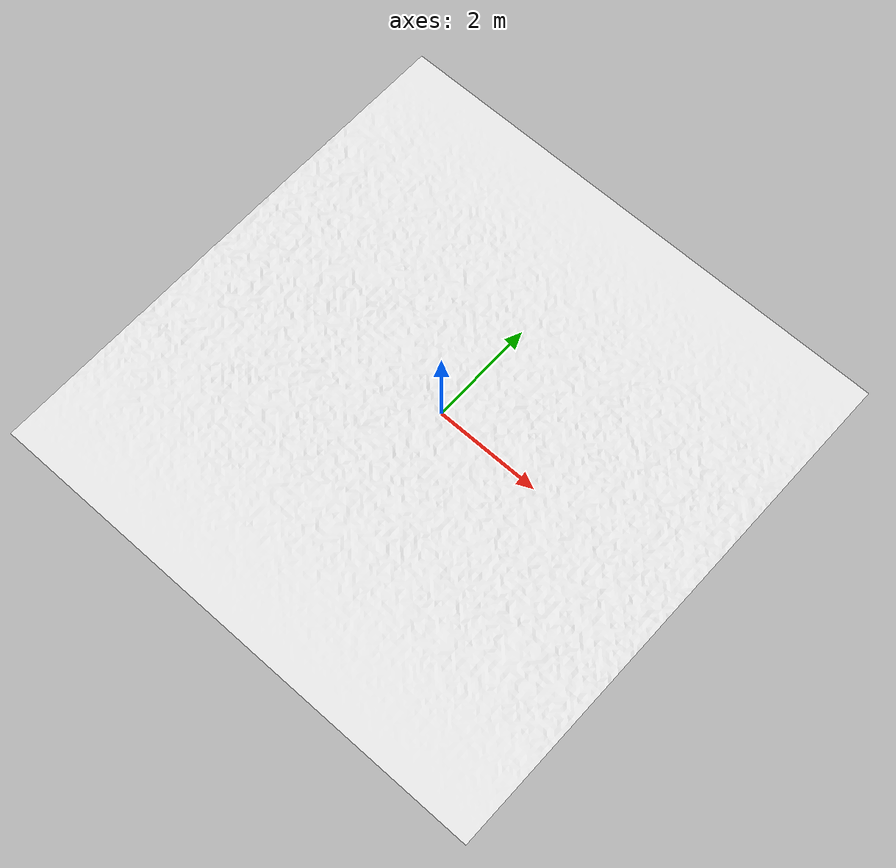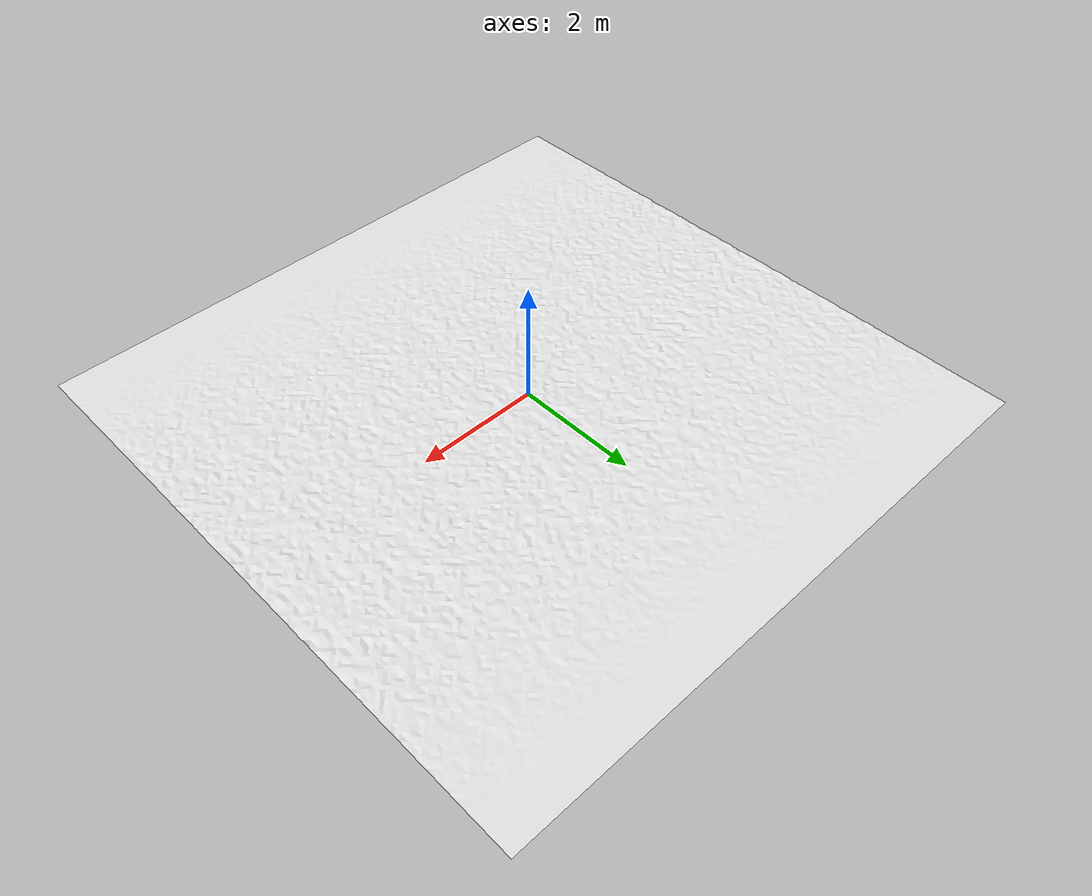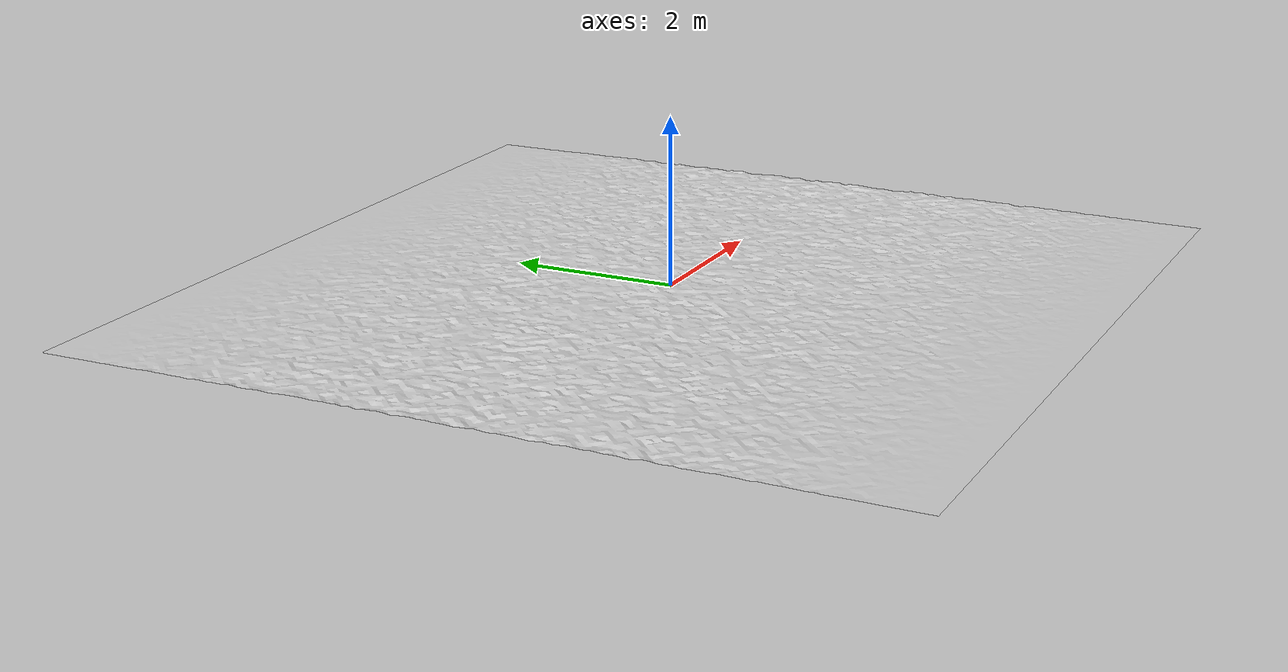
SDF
<?xml version="1.0" ?>
<sdf version="1.5">
  <model name="asphalt">
    <pose>0 0 0 0 0 0</pose>
    <static>true</static>
    <link name="body">
      <visual name="visual">
        <geometry>
          <mesh><uri>model://asphalt/media/asphalt.dae</uri></mesh>
        </geometry>
	<material>
          <script>
            <uri>model://asphalt/media/scripts</uri>
            <uri>model://asphalt/media/Textures</uri>
            <name>RepeatedGrass/Diffuse</name>
          </script>
        </material>
      </visual>
      <collision name="collision">
        <geometry>
          <mesh><uri>model://asphalt/media/asphalt.dae</uri></mesh>
        </geometry>
      </collision>
    </link>
  </model>
</sdf>
